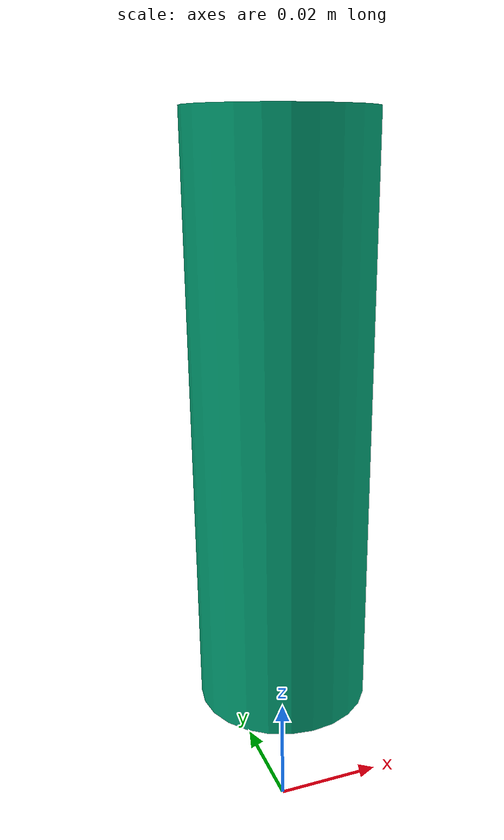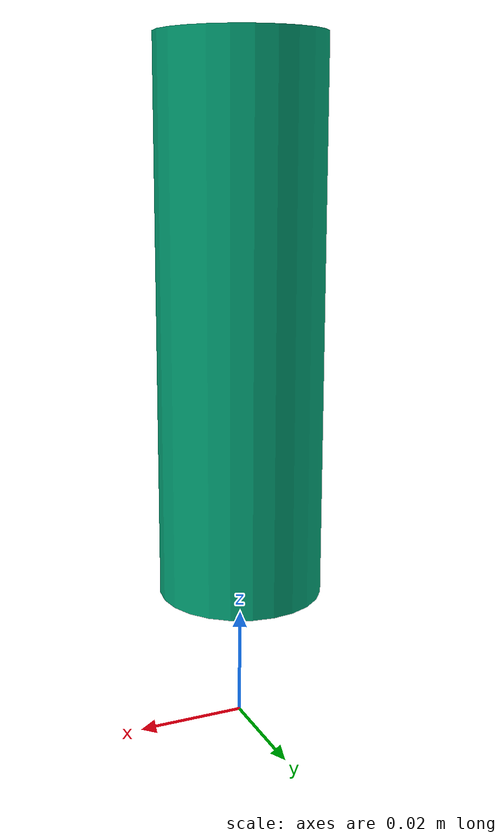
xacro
<robot name="laser_scanner_test" xmlns:xacro="http://wiki.ros.org/xacro">>

    <link name="world" />
    <joint name="world_joint" type="fixed">
        <parent link="world" />
        <child link="base_link" />
        <origin rpy="0 0 0" xyz="0 0 0" />
    </joint>

  <!-- Base Link -->
  <link name="base_link"/>

  <!-- Laser Scanner Link -->
  <link name="laser_scanner_link">
    <visual>
      <origin xyz="0 0 0" rpy="0 0 0" />
      <geometry>
        <cylinder length="0.1" radius="0.015" />
      </geometry>
    </visual>
    <collision>
      <geometry>
        <cylinder length="0.1" radius="0.015" />
      </geometry>
    </collision>
    <inertial>
      <mass value="0.1" />
      <origin xyz="0 0 0" rpy="0 0 0" />
      <inertia ixx="0.03" iyy="0.03" izz="0.03" ixy="0.0" ixz="0.0" iyz="0.0" />
    </inertial>
  </link>

  <!-- Joint -->
  <joint name="base_to_laser" type="fixed">
    <parent link="base_link"/>
    <child link="laser_scanner_link"/>
    <origin xyz="0 0 0.075" rpy="0 0 0"/>
  </joint>

  <!-- Define the Laser Sensor -->
  <gazebo reference="laser_scanner_link">
    <sensor name="laser_scan" type="ray">
      <origin xyz="0 -0.1 0" rpy="0 0 0"/>
      <ray>
        <scan>
          <horizontal>
            <samples>100</samples>
            <resolution>1</resolution>
            <min_angle>-0.474</min_angle>
            <max_angle>0.474</max_angle>
          </horizontal>
        </scan>
        <range>
          <min>0.1</min>
          <max>2</max>
          <resolution>0.01</resolution>
        </range>
      </ray>
      <plugin filename="libgazebo_ros_laser.so" name="gazebo_ros_laser">
        <topicName>laser_scan</topicName>
        <frameName>laser_scanner_link</frameName>
        <updateRate>10</updateRate>
      </plugin>
    </sensor>
  </gazebo>

</robot>
